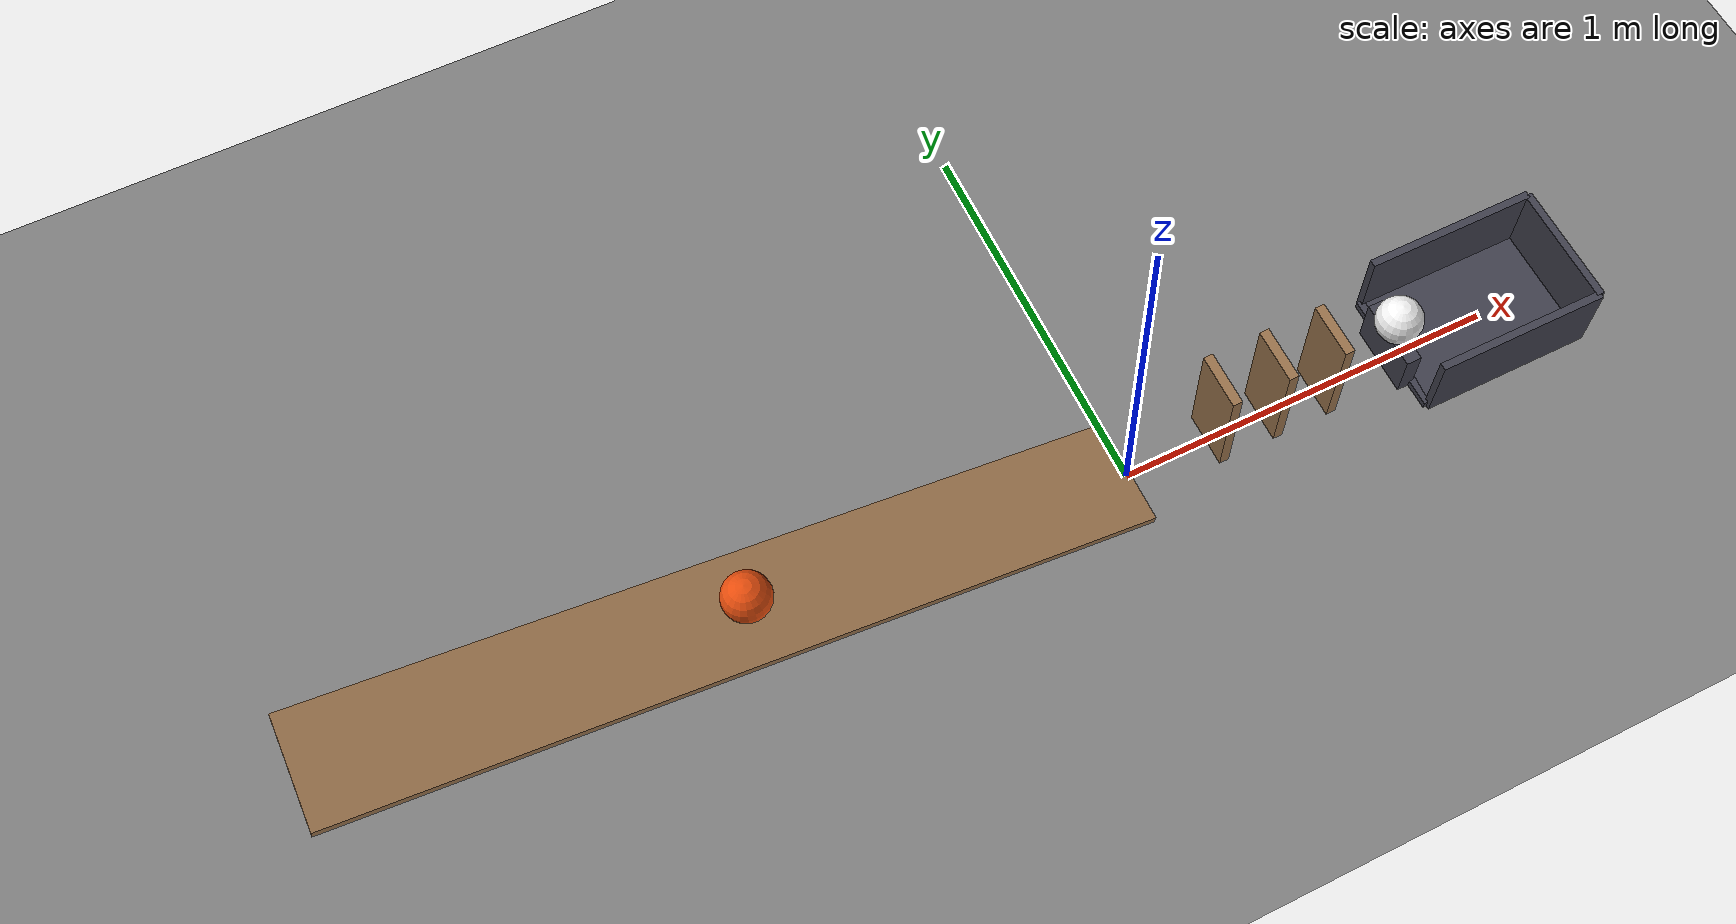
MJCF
<mujoco model="ramp_and_three_dominoes">
  <compiler angle="radian"/>
  <option timestep="0.002"/>
  <worldbody>
    <geom name="floor" type="plane" size="6 6 0.1" friction="0.9 0.01 0.005"/>
    <body name="ramp">
      <geom name="ramp" type="box" pos="-0.9798 0 0.22" size="1 0.14 0.01" euler="0 0.201357 0" friction="0.9 0.005 0.001" rgba="0.6 0.45 0.3 1"/>
    </body>
    <body name="ball1" pos="-0.965804 0 0.288587">
      <freejoint/>
      <geom name="ball1" type="sphere" pos="0 0 0" size="0.06" mass="0.35" condim="6" friction="0.9 0.005 0.001" solref="0.01 1" rgba="0.9 0.3 0.05 1"/>
    </body>
    <body name="d1" pos="0.23 0 0.15">
      <freejoint/>
      <geom name="d1" type="box" pos="0 0 0" size="0.0125 0.07 0.15" mass="0.18" friction="1 0.01 0.001" solref="0.01 1" rgba="0.6 0.45 0.3 1"/>
    </body>
    <body name="d2" pos="0.38 0 0.15">
      <freejoint/>
      <geom name="d2" type="box" pos="0 0 0" size="0.0125 0.07 0.15" mass="0.14" friction="1 0.01 0.001" solref="0.01 1" rgba="0.6 0.45 0.3 1"/>
    </body>
    <body name="d3" pos="0.53 0 0.15">
      <freejoint/>
      <geom name="d3" type="box" pos="0 0 0" size="0.0125 0.07 0.15" mass="0.14" friction="1 0.01 0.001" solref="0.01 1" rgba="0.6 0.45 0.3 1"/>
    </body>
    <body name="ball2 support">
      <geom name="ball2 support" type="box" pos="0.73 0 0.065" size="0.02 0.09 0.065" friction="0.4 0.0005 0.0001" rgba="0.25 0.25 0.3 1"/>
    </body>
    <body name="ball2" pos="0.73 0 0.19">
      <freejoint/>
      <geom name="ball2" type="sphere" pos="0 0 0" size="0.06" mass="0.06" condim="6" friction="0.4 0.0005 0.0001" solref="0.01 1" rgba="0.95 0.95 0.95 1"/>
    </body>
    <body name="cup">
      <geom name="cup_base" type="box" pos="0.975 0 0.01" size="0.225 0.16 0.01" friction="1 0.03 0.02" solref="0.01 1" rgba="0.25 0.25 0.3 1"/>
      <geom name="cup_near_wall" type="box" pos="0.75 0 0.01" size="0.01 0.16 0.01" friction="1 0.03 0.02" solref="0.01 1" rgba="0.25 0.25 0.3 1"/>
      <geom name="cup_far_wall" type="box" pos="1.2 0 0.1" size="0.01 0.16 0.1" friction="1 0.03 0.02" solref="0.01 1" rgba="0.25 0.25 0.3 1"/>
      <geom name="cup_left_wall" type="box" pos="0.975 0.16 0.1" size="0.225 0.01 0.1" friction="1 0.03 0.02" solref="0.01 1" rgba="0.25 0.25 0.3 1"/>
      <geom name="cup_right_wall" type="box" pos="0.975 -0.16 0.1" size="0.225 0.01 0.1" friction="1 0.03 0.02" solref="0.01 1" rgba="0.25 0.25 0.3 1"/>
    </body>
  </worldbody>
  <keyframe>
    <key name="start" qpos="-0.965804 0 0.288587 1 0 0 0 0.23 0 0.15 1 0 0 0 0.38 0 0.15 1 0 0 0 0.53 0 0.15 1 0 0 0 0.73 0 0.19 1 0 0 0" qvel="0 0 0 0 0 0 0 0 0 0 0 0 0 0 0 0 0 0 0 0 0 0 0 0 0 0 0 0 0 0"/>
  </keyframe>
</mujoco>
